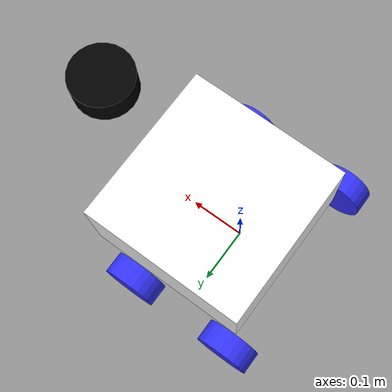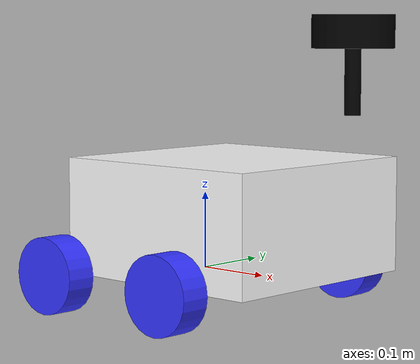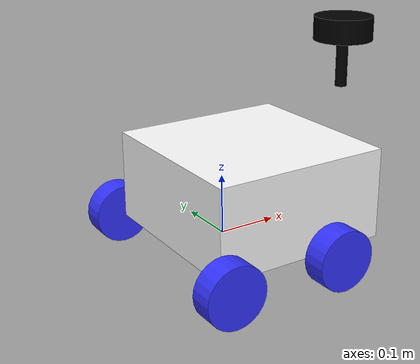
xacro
<?xml version="1.0"?>
<robot xmlns:xacro="http://www.ros.org/wiki/xacro"  name="robot">

    <xacro:include filename="inertial_macros.xacro" />

    <material name="white">
        <color rgba="1 1 1 1" />
    </material>
    <material name="orange">
        <color rgba="1 0.3 0.1 1"/>
    </material>
    <material name="blue">
        <color rgba="0.2 0.2 1 1"/>
    </material>
    <material name="black">
        <color rgba="0 0 0 1"/>
    </material>
    <material name="red">
        <color rgba="1 0 0 1"/>
    </material>

    <xacro:include filename="robot_core.xacro" />
    <xacro:include filename="lidar.xacro" />
    <xacro:include filename="gazebo_control.xacro" />

</robot>

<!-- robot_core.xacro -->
<robot xmlns:xacro="http://www.ros.org/wiki/xacro" >

<!-- BASE LINK -->
<link name="base_link">
</link>

  <!-- BASE_FOOTPRINT LINK -->

    <joint name="base_footprint_joint" type="fixed">
        <parent link="base_link"/>
        <child link="base_footprint"/>
        <origin xyz="0 0 0" rpy="0 0 0"/>
    </joint>

    <link name="base_footprint">
    </link>

<!-- CHASSIS LINK -->
<joint name="chassis_joint" type="fixed">
    <parent link="base_link"/>
    <child link="chassis"/>
    <origin xyz="-0.1 0 0"/>
</joint>

<link name="chassis">
    <visual>
        <origin xyz="0.15 0 0.075"/>
        <geometry>
            <box size="0.3 0.3 0.15"/>
        </geometry>
        <material name="white"/>
    </visual>
    <collision>
        <origin xyz="0.15 0 0.075"/>
        <geometry>
            <box size="0.3 0.3 0.15"/>
        </geometry>
    </collision>
    <xacro:inertial_box mass="0.5" x="0.3" y="0.3" z="0.15">
        <origin xyz="0.15 0 0.075" rpy="0 0 0"/>
    </xacro:inertial_box>
</link>

<gazebo reference="chassis">
    <material>Gazebo/White</material>
</gazebo>

<!-- FRONT LEFT WHEEL LINK -->
<joint name="front_left_wheel_joint" type="continuous">
    <parent link="base_link"/>
    <child link="front_left_wheel"/>
    <origin xyz="0.1 0.175 0" rpy="-${pi/2} 0 0" />
    <axis xyz="0 0 1"/>
</joint>

<link name="front_left_wheel">
    <visual>
        <geometry>
            <cylinder radius="0.05" length="0.04"/>
        </geometry>
        <material name="blue"/>
    </visual>
    <collision>
        <geometry>
            <cylinder radius="0.05" length="0.04"/>
        </geometry>
    </collision>
    <xacro:inertial_cylinder mass="0.1" length="0.04" radius="0.05">
        <origin xyz="0 0 0" rpy="0 0 0"/>
    </xacro:inertial_cylinder>
</link>

<gazebo reference="front_left_wheel">
    <material>Gazebo/Blue</material>
</gazebo>

<!-- FRONT RIGHT WHEEL LINK -->
<joint name="front_right_wheel_joint" type="continuous">
    <parent link="base_link"/>
    <child link="front_right_wheel"/>
    <origin xyz="0.1 -0.175 0" rpy="${pi/2} 0 0" />
    <axis xyz="0 0 -1"/>
</joint>

<link name="front_right_wheel">
    <visual>
        <geometry>
            <cylinder radius="0.05" length="0.04"/>
        </geometry>
        <material name="blue"/>
    </visual>
    <collision>
        <geometry>
            <cylinder radius="0.05" length="0.04"/>
        </geometry>
    </collision>
    <xacro:inertial_cylinder mass="0.1" length="0.04" radius="0.05">
        <origin xyz="0 0 0" rpy="0 0 0"/>
    </xacro:inertial_cylinder>
</link>

<gazebo reference="front_right_wheel">
    <material>Gazebo/Blue</material>
</gazebo>

<!-- REAR LEFT WHEEL LINK -->
<joint name="rear_left_wheel_joint" type="continuous">
    <parent link="base_link"/>
    <child link="rear_left_wheel"/>
    <origin xyz="-0.1 0.175 0" rpy="-${pi/2} 0 0" />
    <axis xyz="0 0 1"/>
</joint>

<link name="rear_left_wheel">
    <visual>
        <geometry>
            <cylinder radius="0.05" length="0.04"/>
        </geometry>
        <material name="blue"/>
    </visual>
    <collision>
        <geometry>
            <cylinder radius="0.05" length="0.04"/>
        </geometry>
    </collision>
    <xacro:inertial_cylinder mass="0.1" length="0.04" radius="0.05">
        <origin xyz="0 0 0" rpy="0 0 0"/>
    </xacro:inertial_cylinder>
</link>

<gazebo reference="rear_left_wheel">
    <material>Gazebo/Blue</material>
</gazebo>

<!-- REAR RIGHT WHEEL LINK -->
<joint name="rear_right_wheel_joint" type="continuous">
    <parent link="base_link"/>
    <child link="rear_right_wheel"/>
    <origin xyz="-0.1 -0.175 0" rpy="${pi/2} 0 0" />
    <axis xyz="0 0 -1"/>
</joint>

<link name="rear_right_wheel">
    <visual>
        <geometry>
            <cylinder radius="0.05" length="0.04"/>
        </geometry>
        <material name="blue"/>
    </visual>
    <collision>
        <geometry>
            <cylinder radius="0.05" length="0.04"/>
        </geometry>
    </collision>
    <xacro:inertial_cylinder mass="0.1" length="0.04" radius="0.05">
        <origin xyz="0 0 0" rpy="0 0 0"/>
    </xacro:inertial_cylinder>
</link>

<gazebo reference="rear_right_wheel">
    <material>Gazebo/Blue</material>
</gazebo>

</robot>

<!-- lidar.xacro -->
<robot xmlns:xacro="http://www.ros.org/wiki/xacro" >

    <joint name="laser_joint" type="fixed">
        <parent link="chassis"/>
        <child link="laser_frame"/>
        <origin xyz="0.342 0 0.312" rpy="0 0 0"/>
    </joint>

    <link name="laser_frame">
        <visual>
            <geometry>
                <cylinder radius="0.05" length="0.04"/>
            </geometry>
            <material name="black"/>
        </visual>
        <visual>
            <origin xyz="0 0 -0.05"/>
            <geometry>
                <cylinder radius="0.01" length="0.1"/>
            </geometry>
            <material name="black"/>
        </visual>
        <collision>
            <geometry>
                <cylinder radius="0.05" length="0.04"/>
            </geometry>
        </collision>
        <xacro:inertial_cylinder mass="0.1" length="0.04" radius="0.05">
            <origin xyz="0 0 0" rpy="0 0 0"/>
        </xacro:inertial_cylinder>
    </link>

    <gazebo reference="laser_frame">
        <material>Gazebo/Black</material>

        <sensor name="laser" type="ray">
            <pose> 0 0 0 0 0 0 </pose>
            <visualize>false</visualize>
            <update_rate>10</update_rate>
            <ray>
                <scan>
                    <horizontal>
                        <samples>360</samples>
                        <min_angle>-3.14</min_angle>
                        <max_angle>3.14</max_angle>
                    </horizontal>
                </scan>
                <range>
                    <min>0.3</min>
                    <max>12</max>
                </range>
            </ray>
            <plugin name="laser_controller" filename="libgazebo_ros_ray_sensor.so">
                <ros>
                    <argument>~/out:=scan</argument>
                </ros>
                <output_type>sensor_msgs/LaserScan</output_type>
                <frame_name>laser_frame</frame_name>
            </plugin>
        </sensor>
    </gazebo>

</robot>
